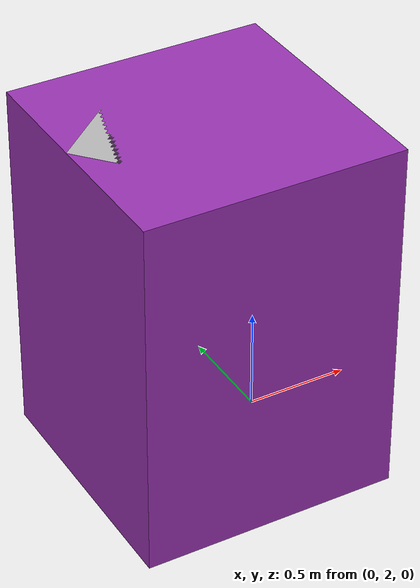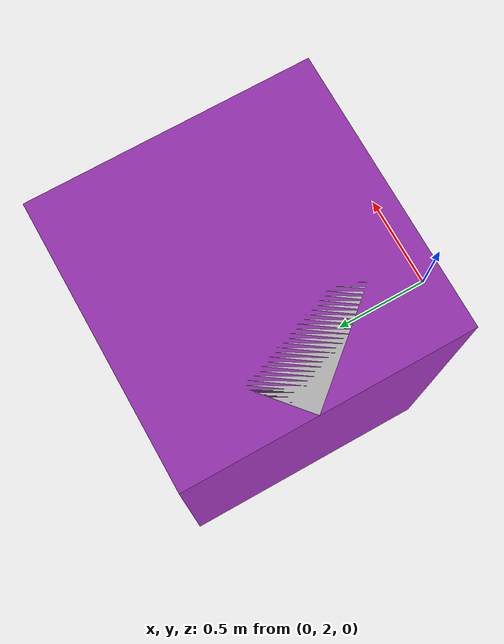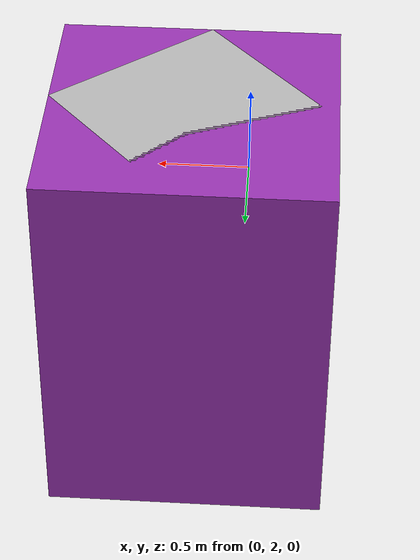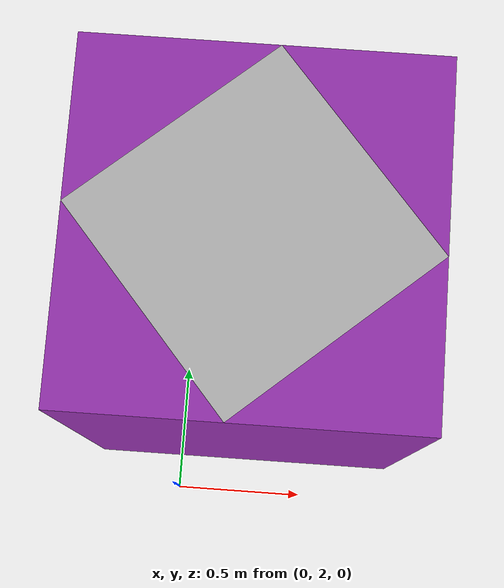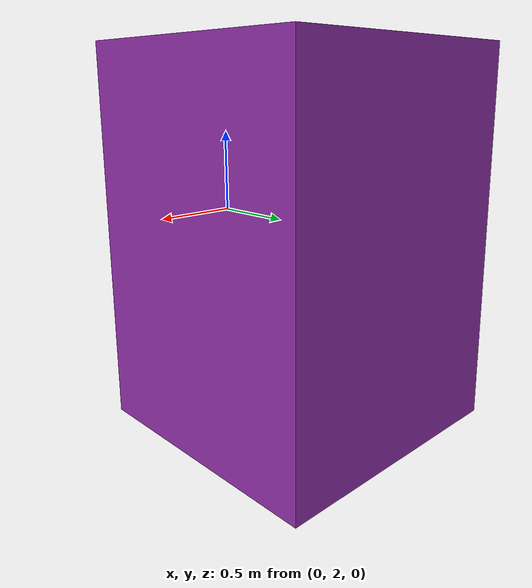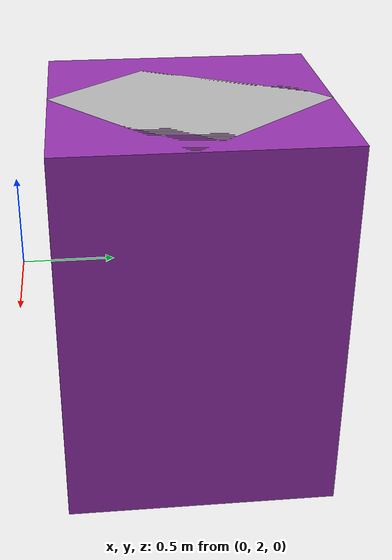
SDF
<?xml version="1.0" ?>
<sdf version="1.6">
  <world name="default">
    <include>
      <uri>model://sun</uri>
    </include>

    <model name="post">
      <static>true</static>
      <link name="link">
        <sensor name="logical_camera" type="logical_camera">
          <pose>0 0 1 0 0 0.707</pose>
          <logical_camera>
            <near>0.55</near>
            <far>2.5</far>
            <horizontal_fov>1.05</horizontal_fov>
            <aspect_ratio>1.8</aspect_ratio>
          </logical_camera>

          <visualize>true</visualize>
          <always_on>true</always_on>
          <update_rate>10</update_rate>
        </sensor>
      </link>
    </model>

    <model name="target_box">
      <static>true</static>
      <pose>0.25 2.9 0 0 0 0</pose>
      <link name="link">
        <pose>0 0 0 0 0 0.707</pose>
        <collision name="tall_collision">
          <geometry>
            <box>
              <size>1 1 2</size>
            </box>
          </geometry>
        </collision>
        <visual name="tall_visual">
          <geometry>
            <box>
              <size>1 1 2</size>
            </box>
          </geometry>
        </visual>
      </link>
      <!-- Shows that aabb overlaps with frustum despite box not appearing to be in it -->
      <link name="aabb_link">
        <visual name="aabb_visual">
          <geometry>
            <box>
              <size>1.41 1.41 2</size>
            </box>
          </geometry>
          <material>
            <script>
              <uri>file://../../wireframe.material</uri>
              <name>Wireframe/Purple</name>
            </script>
          </material>
        </visual>
      </link>
    </model>
  </world>
</sdf>
